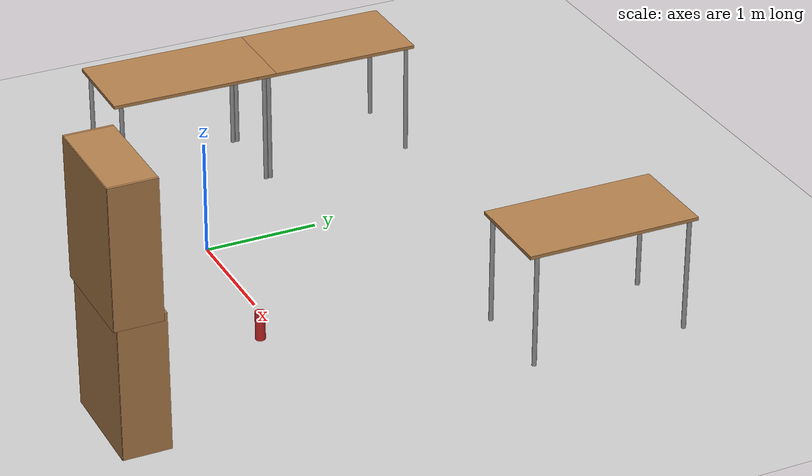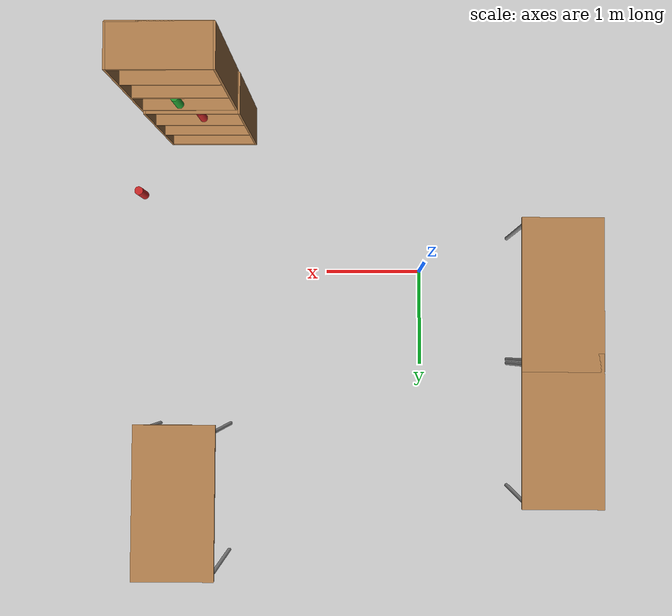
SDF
<sdf version="1.6">
 <world name="default">
  <model name="ground_plane">
   <static>1</static>
   <link name="link">
    <collision name="collision">
     <geometry><plane><normal>0 0 1</normal><size>100 100</size></plane></geometry>
     <surface><friction><ode><mu>100</mu><mu2>50</mu2></ode></friction></surface>
    </collision>
    <visual name="visual">
     <cast_shadows>0</cast_shadows>
     <geometry><plane><normal>0 0 1</normal><size>100 100</size></plane></geometry>
     <material>
      <script><uri>file://media/materials/scripts/gazebo.material</uri><name>Gazebo/Grey</name></script>
     </material>
    </visual>
   </link>
  </model>
  <model name="table">
   <static>1</static>
   <link name="link">
    <collision name="surface">
     <pose>0 0 1 0 -0 0</pose>
     <geometry><box><size>1.5 0.8 0.03</size></box></geometry>
     <surface><friction><ode><mu>0.6</mu><mu2>0.6</mu2></ode></friction></surface>
    </collision>
    <visual name="visual1">
     <pose>0 0 1 0 -0 0</pose>
     <geometry><box><size>1.5 0.8 0.03</size></box></geometry>
     <material>
      <script><uri>file://media/materials/scripts/gazebo.material</uri><name>Gazebo/Wood</name></script>
     </material>
    </visual>
    <collision name="front_left_leg">
     <pose>0.68 0.38 0.5 0 -0 0</pose>
     <geometry><cylinder><radius>0.02</radius><length>1</length></cylinder></geometry>
    </collision>
    <visual name="front_left_leg">
     <pose>0.68 0.38 0.5 0 -0 0</pose>
     <geometry><cylinder><radius>0.02</radius><length>1</length></cylinder></geometry>
     <material>
      <script><uri>file://media/materials/scripts/gazebo.material</uri><name>Gazebo/Grey</name></script>
     </material>
    </visual>
    <collision name="front_right_leg">
     <pose>0.68 -0.38 0.5 0 -0 0</pose>
     <geometry><cylinder><radius>0.02</radius><length>1</length></cylinder></geometry>
    </collision>
    <visual name="front_right_leg">
     <pose>0.68 -0.38 0.5 0 -0 0</pose>
     <geometry><cylinder><radius>0.02</radius><length>1</length></cylinder></geometry>
     <material>
      <script><uri>file://media/materials/scripts/gazebo.material</uri><name>Gazebo/Grey</name></script>
     </material>
    </visual>
    <collision name="back_right_leg">
     <pose>-0.68 -0.38 0.5 0 -0 0</pose>
     <geometry><cylinder><radius>0.02</radius><length>1</length></cylinder></geometry>
    </collision>
    <visual name="back_right_leg">
     <pose>-0.68 -0.38 0.5 0 -0 0</pose>
     <geometry><cylinder><radius>0.02</radius><length>1</length></cylinder></geometry>
     <material>
      <script><uri>file://media/materials/scripts/gazebo.material</uri><name>Gazebo/Grey</name></script>
     </material>
    </visual>
    <collision name="back_left_leg">
     <pose>-0.68 0.38 0.5 0 -0 0</pose>
     <geometry><cylinder><radius>0.02</radius><length>1</length></cylinder></geometry>
    </collision>
    <visual name="back_left_leg">
     <pose>-0.68 0.38 0.5 0 -0 0</pose>
     <geometry><cylinder><radius>0.02</radius><length>1</length></cylinder></geometry>
     <material>
      <script><uri>file://media/materials/scripts/gazebo.material</uri><name>Gazebo/Grey</name></script>
     </material>
    </visual>
   </link>
   <pose>-1.33827 0.322435 0 0 0 -1.58073</pose>
  </model>
  <model name="table_clone">
   <static>1</static>
   <link name="link">
    <collision name="surface">
     <pose>0 0 1 0 -0 0</pose>
     <geometry><box><size>1.5 0.8 0.03</size></box></geometry>
     <surface><friction><ode><mu>0.6</mu><mu2>0.6</mu2></ode></friction></surface>
    </collision>
    <visual name="visual1">
     <pose>0 0 1 0 -0 0</pose>
     <geometry><box><size>1.5 0.8 0.03</size></box></geometry>
     <material>
      <script><uri>file://media/materials/scripts/gazebo.material</uri><name>Gazebo/Wood</name></script>
     </material>
    </visual>
    <collision name="front_left_leg">
     <pose>0.68 0.38 0.5 0 -0 0</pose>
     <geometry><cylinder><radius>0.02</radius><length>1</length></cylinder></geometry>
    </collision>
    <visual name="front_left_leg">
     <pose>0.68 0.38 0.5 0 -0 0</pose>
     <geometry><cylinder><radius>0.02</radius><length>1</length></cylinder></geometry>
     <material>
      <script><uri>file://media/materials/scripts/gazebo.material</uri><name>Gazebo/Grey</name></script>
     </material>
    </visual>
    <collision name="front_right_leg">
     <pose>0.68 -0.38 0.5 0 -0 0</pose>
     <geometry><cylinder><radius>0.02</radius><length>1</length></cylinder></geometry>
    </collision>
    <visual name="front_right_leg">
     <pose>0.68 -0.38 0.5 0 -0 0</pose>
     <geometry><cylinder><radius>0.02</radius><length>1</length></cylinder></geometry>
     <material>
      <script><uri>file://media/materials/scripts/gazebo.material</uri><name>Gazebo/Grey</name></script>
     </material>
    </visual>
    <collision name="back_right_leg">
     <pose>-0.68 -0.38 0.5 0 -0 0</pose>
     <geometry><cylinder><radius>0.02</radius><length>1</length></cylinder></geometry>
    </collision>
    <visual name="back_right_leg">
     <pose>-0.68 -0.38 0.5 0 -0 0</pose>
     <geometry><cylinder><radius>0.02</radius><length>1</length></cylinder></geometry>
     <material>
      <script><uri>file://media/materials/scripts/gazebo.material</uri><name>Gazebo/Grey</name></script>
     </material>
    </visual>
    <collision name="back_left_leg">
     <pose>-0.68 0.38 0.5 0 -0 0</pose>
     <geometry><cylinder><radius>0.02</radius><length>1</length></cylinder></geometry>
    </collision>
    <visual name="back_left_leg">
     <pose>-0.68 0.38 0.5 0 -0 0</pose>
     <geometry><cylinder><radius>0.02</radius><length>1</length></cylinder></geometry>
     <material>
      <script><uri>file://media/materials/scripts/gazebo.material</uri><name>Gazebo/Grey</name></script>
     </material>
    </visual>
   </link>
   <pose>-1.32325 1.64119 0 0 0 -1.58073</pose>
  </model>
  <model name="table_clone_2">
   <static>1</static>
   <link name="link">
    <collision name="surface">
     <pose>0 0 1 0 -0 0</pose>
     <geometry><box><size>1.5 0.8 0.03</size></box></geometry>
     <surface><friction><ode><mu>0.6</mu><mu2>0.6</mu2></ode></friction></surface>
    </collision>
    <visual name="visual1">
     <pose>0 0 1 0 -0 0</pose>
     <geometry><box><size>1.5 0.8 0.03</size></box></geometry>
     <material>
      <script><uri>file://media/materials/scripts/gazebo.material</uri><name>Gazebo/Wood</name></script>
     </material>
    </visual>
    <collision name="front_left_leg">
     <pose>0.68 0.38 0.5 0 -0 0</pose>
     <geometry><cylinder><radius>0.02</radius><length>1</length></cylinder></geometry>
    </collision>
    <visual name="front_left_leg">
     <pose>0.68 0.38 0.5 0 -0 0</pose>
     <geometry><cylinder><radius>0.02</radius><length>1</length></cylinder></geometry>
     <material>
      <script><uri>file://media/materials/scripts/gazebo.material</uri><name>Gazebo/Grey</name></script>
     </material>
    </visual>
    <collision name="front_right_leg">
     <pose>0.68 -0.38 0.5 0 -0 0</pose>
     <geometry><cylinder><radius>0.02</radius><length>1</length></cylinder></geometry>
    </collision>
    <visual name="front_right_leg">
     <pose>0.68 -0.38 0.5 0 -0 0</pose>
     <geometry><cylinder><radius>0.02</radius><length>1</length></cylinder></geometry>
     <material>
      <script><uri>file://media/materials/scripts/gazebo.material</uri><name>Gazebo/Grey</name></script>
     </material>
    </visual>
    <collision name="back_right_leg">
     <pose>-0.68 -0.38 0.5 0 -0 0</pose>
     <geometry><cylinder><radius>0.02</radius><length>1</length></cylinder></geometry>
    </collision>
    <visual name="back_right_leg">
     <pose>-0.68 -0.38 0.5 0 -0 0</pose>
     <geometry><cylinder><radius>0.02</radius><length>1</length></cylinder></geometry>
     <material>
      <script><uri>file://media/materials/scripts/gazebo.material</uri><name>Gazebo/Grey</name></script>
     </material>
    </visual>
    <collision name="back_left_leg">
     <pose>-0.68 0.38 0.5 0 -0 0</pose>
     <geometry><cylinder><radius>0.02</radius><length>1</length></cylinder></geometry>
    </collision>
    <visual name="back_left_leg">
     <pose>-0.68 0.38 0.5 0 -0 0</pose>
     <geometry><cylinder><radius>0.02</radius><length>1</length></cylinder></geometry>
     <material>
      <script><uri>file://media/materials/scripts/gazebo.material</uri><name>Gazebo/Grey</name></script>
     </material>
    </visual>
   </link>
   <pose>2.43494 2.31407 0 0 0 -1.58073</pose>
  </model>
  <model name="bookshelf">
   <static>1</static>
   <link name="link">
    <inertial><mass>1</mass></inertial>
    <collision name="back">
     <pose>0 0.005 0.6 0 -0 0</pose>
     <geometry><box><size>0.9 0.01 1.2</size></box></geometry>
    </collision>
    <visual name="visual1">
     <pose>0 0.005 0.6 0 -0 0</pose>
     <geometry><box><size>0.9 0.01 1.2</size></box></geometry>
     <material>
      <script><uri>file://media/materials/scripts/gazebo.material</uri><name>Gazebo/Wood</name></script>
     </material>
    </visual>
    <collision name="left_side">
     <pose>0.45 -0.195 0.6 0 -0 0</pose>
     <geometry><box><size>0.02 0.4 1.2</size></box></geometry>
    </collision>
    <visual name="visual2">
     <pose>0.45 -0.195 0.6 0 -0 0</pose>
     <geometry><box><size>0.02 0.4 1.2</size></box></geometry>
     <material>
      <script><uri>file://media/materials/scripts/gazebo.material</uri><name>Gazebo/Wood</name></script>
     </material>
    </visual>
    <collision name="right_side">
     <pose>-0.45 -0.195 0.6 0 -0 0</pose>
     <geometry><box><size>0.02 0.4 1.2</size></box></geometry>
    </collision>
    <visual name="visual3">
     <pose>-0.45 -0.195 0.6 0 -0 0</pose>
     <geometry><box><size>0.02 0.4 1.2</size></box></geometry>
     <material>
      <script><uri>file://media/materials/scripts/gazebo.material</uri><name>Gazebo/Wood</name></script>
     </material>
    </visual>
    <collision name="bottom">
     <pose>0 -0.195 0.03 0 -0 0</pose>
     <geometry><box><size>0.88 0.4 0.06</size></box></geometry>
    </collision>
    <visual name="visual4">
     <pose>0 -0.195 0.03 0 -0 0</pose>
     <geometry><box><size>0.88 0.4 0.06</size></box></geometry>
     <material>
      <script><uri>file://media/materials/scripts/gazebo.material</uri><name>Gazebo/Wood</name></script>
     </material>
    </visual>
    <collision name="top">
     <pose>0 -0.195 1.19 0 -0 0</pose>
     <geometry><box><size>0.88 0.4 0.02</size></box></geometry>
    </collision>
    <visual name="visual5">
     <pose>0 -0.195 1.19 0 -0 0</pose>
     <geometry><box><size>0.88 0.4 0.02</size></box></geometry>
     <material>
      <script><uri>file://media/materials/scripts/gazebo.material</uri><name>Gazebo/Wood</name></script>
     </material>
    </visual>
    <collision name="low_shelf">
     <pose>0 -0.195 0.43 0 -0 0</pose>
     <geometry><box><size>0.88 0.4 0.02</size></box></geometry>
    </collision>
    <visual name="visual6">
     <pose>0 -0.195 0.43 0 -0 0</pose>
     <geometry><box><size>0.88 0.4 0.02</size></box></geometry>
     <material>
      <script><uri>file://media/materials/scripts/gazebo.material</uri><name>Gazebo/Wood</name></script>
     </material>
    </visual>
    <collision name="high_shelf">
     <pose>0 -0.195 0.8 0 -0 0</pose>
     <geometry><box><size>0.88 0.4 0.02</size></box></geometry>
    </collision>
    <visual name="visual7">
     <pose>0 -0.195 0.8 0 -0 0</pose>
     <geometry><box><size>0.88 0.4 0.02</size></box></geometry>
     <material>
      <script><uri>file://media/materials/scripts/gazebo.material</uri><name>Gazebo/Wood</name></script>
     </material>
    </visual>
   </link>
   <pose>2.22074 -1.79552 0 0 -0 3.13694</pose>
  </model>
  <model name="bookshelf_0">
   <static>1</static>
   <link name="link">
    <inertial><mass>1</mass></inertial>
    <collision name="back">
     <pose>0 0.005 0.6 0 -0 0</pose>
     <geometry><box><size>0.9 0.01 1.2</size></box></geometry>
    </collision>
    <visual name="visual1">
     <pose>0 0.005 0.6 0 -0 0</pose>
     <geometry><box><size>0.9 0.01 1.2</size></box></geometry>
     <material>
      <script><uri>file://media/materials/scripts/gazebo.material</uri><name>Gazebo/Wood</name></script>
     </material>
    </visual>
    <collision name="left_side">
     <pose>0.45 -0.195 0.6 0 -0 0</pose>
     <geometry><box><size>0.02 0.4 1.2</size></box></geometry>
    </collision>
    <visual name="visual2">
     <pose>0.45 -0.195 0.6 0 -0 0</pose>
     <geometry><box><size>0.02 0.4 1.2</size></box></geometry>
     <material>
      <script><uri>file://media/materials/scripts/gazebo.material</uri><name>Gazebo/Wood</name></script>
     </material>
    </visual>
    <collision name="right_side">
     <pose>-0.45 -0.195 0.6 0 -0 0</pose>
     <geometry><box><size>0.02 0.4 1.2</size></box></geometry>
    </collision>
    <visual name="visual3">
     <pose>-0.45 -0.195 0.6 0 -0 0</pose>
     <geometry><box><size>0.02 0.4 1.2</size></box></geometry>
     <material>
      <script><uri>file://media/materials/scripts/gazebo.material</uri><name>Gazebo/Wood</name></script>
     </material>
    </visual>
    <collision name="bottom">
     <pose>0 -0.195 0.03 0 -0 0</pose>
     <geometry><box><size>0.88 0.4 0.06</size></box></geometry>
    </collision>
    <visual name="visual4">
     <pose>0 -0.195 0.03 0 -0 0</pose>
     <geometry><box><size>0.88 0.4 0.06</size></box></geometry>
     <material>
      <script><uri>file://media/materials/scripts/gazebo.material</uri><name>Gazebo/Wood</name></script>
     </material>
    </visual>
    <collision name="top">
     <pose>0 -0.195 1.19 0 -0 0</pose>
     <geometry><box><size>0.88 0.4 0.02</size></box></geometry>
    </collision>
    <visual name="visual5">
     <pose>0 -0.195 1.19 0 -0 0</pose>
     <geometry><box><size>0.88 0.4 0.02</size></box></geometry>
     <material>
      <script><uri>file://media/materials/scripts/gazebo.material</uri><name>Gazebo/Wood</name></script>
     </material>
    </visual>
    <collision name="low_shelf">
     <pose>0 -0.195 0.43 0 -0 0</pose>
     <geometry><box><size>0.88 0.4 0.02</size></box></geometry>
    </collision>
    <visual name="visual6">
     <pose>0 -0.195 0.43 0 -0 0</pose>
     <geometry><box><size>0.88 0.4 0.02</size></box></geometry>
     <material>
      <script><uri>file://media/materials/scripts/gazebo.material</uri><name>Gazebo/Wood</name></script>
     </material>
    </visual>
    <collision name="high_shelf">
     <pose>0 -0.195 0.8 0 -0 0</pose>
     <geometry><box><size>0.88 0.4 0.02</size></box></geometry>
    </collision>
    <visual name="visual7">
     <pose>0 -0.195 0.8 0 -0 0</pose>
     <geometry><box><size>0.88 0.4 0.02</size></box></geometry>
     <material>
      <script><uri>file://media/materials/scripts/gazebo.material</uri><name>Gazebo/Wood</name></script>
     </material>
    </visual>
   </link>
   <pose>2.2424 -1.82861 1.14872 0 -0 3.14018</pose>
  </model>
  <model name="pringles_red">
   <pose>2.18355 -1.47083 0.92729 8e-06 1.9e-05 0</pose>
   <link name="link">
    <inertial>
     <mass>0.2</mass>
     <inertia>
      <ixx>0.000908</ixx>
      <ixy>0</ixy>
      <ixz>0</ixz>
      <iyy>0.000908</iyy>
      <iyz>0</iyz>
      <izz>0.0002025</izz>
     </inertia>
    </inertial>
    <collision name="collision">
     <geometry><cylinder><radius>0.04</radius><length>0.235</length></cylinder></geometry>
     <surface>
      <contact><ode><min_depth>0.005</min_depth></ode></contact>
      <friction><ode><mu>0.9</mu><mu2>0.9</mu2></ode></friction>
     </surface>
    </collision>
    <visual name="visual">
     <pose>0 0 0 3.1415 -0 0</pose>
     <geometry><cylinder><radius>0.04</radius><length>0.235</length></cylinder></geometry>
     <material>
      <script>
       <uri>model://pringles_red/material/scripts</uri>
       <uri>model://pringles_red/material/textures</uri>
       <name>Custom/PringlesRed</name>
      </script>
     </material>
    </visual>
   </link>
  </model>
  <model name="pringles_green">
   <pose>2.3331 -1.48758 1.32615 6e-06 1.5e-05 0</pose>
   <link name="link">
    <inertial>
     <mass>0.2</mass>
     <inertia>
      <ixx>0.000908</ixx>
      <ixy>0</ixy>
      <ixz>0</ixz>
      <iyy>0.000908</iyy>
      <iyz>0</iyz>
      <izz>0.0002025</izz>
     </inertia>
    </inertial>
    <collision name="collision">
     <geometry><cylinder><radius>0.04</radius><length>0.235</length></cylinder></geometry>
     <surface>
      <contact><ode><min_depth>0.005</min_depth></ode></contact>
      <friction><ode><mu>0.9</mu><mu2>0.9</mu2></ode></friction>
     </surface>
    </collision>
    <visual name="visual">
     <geometry><cylinder><radius>0.04</radius><length>0.235</length></cylinder></geometry>
     <material>
      <script>
       <uri>model://pringles_green/material/scripts</uri>
       <uri>model://pringles_green/material/textures</uri>
       <name>Custom/PringlesGreen</name>
      </script>
     </material>
    </visual>
   </link>
  </model>
  <model name="pringles_red_0">
   <pose>2.76005 -0.694364 0.949496 5e-06 2.3e-05 1.59212</pose>
   <link name="link">
    <inertial>
     <mass>0.2</mass>
     <inertia>
      <ixx>0.000908</ixx>
      <ixy>0</ixy>
      <ixz>0</ixz>
      <iyy>0.000908</iyy>
      <iyz>0</iyz>
      <izz>0.0002025</izz>
     </inertia>
    </inertial>
    <collision name="collision">
     <geometry><cylinder><radius>0.04</radius><length>0.235</length></cylinder></geometry>
     <surface>
      <contact><ode><min_depth>0.005</min_depth></ode></contact>
      <friction><ode><mu>0.9</mu><mu2>0.9</mu2></ode></friction>
     </surface>
    </collision>
    <visual name="visual">
     <pose>0 0 0 3.1415 -0 0</pose>
     <geometry><cylinder><radius>0.04</radius><length>0.235</length></cylinder></geometry>
     <material>
      <script>
       <uri>model://pringles_red/material/scripts</uri>
       <uri>model://pringles_red/material/textures</uri>
       <name>Custom/PringlesRed</name>
      </script>
     </material>
    </visual>
   </link>
  </model>
 </world>
</sdf>
